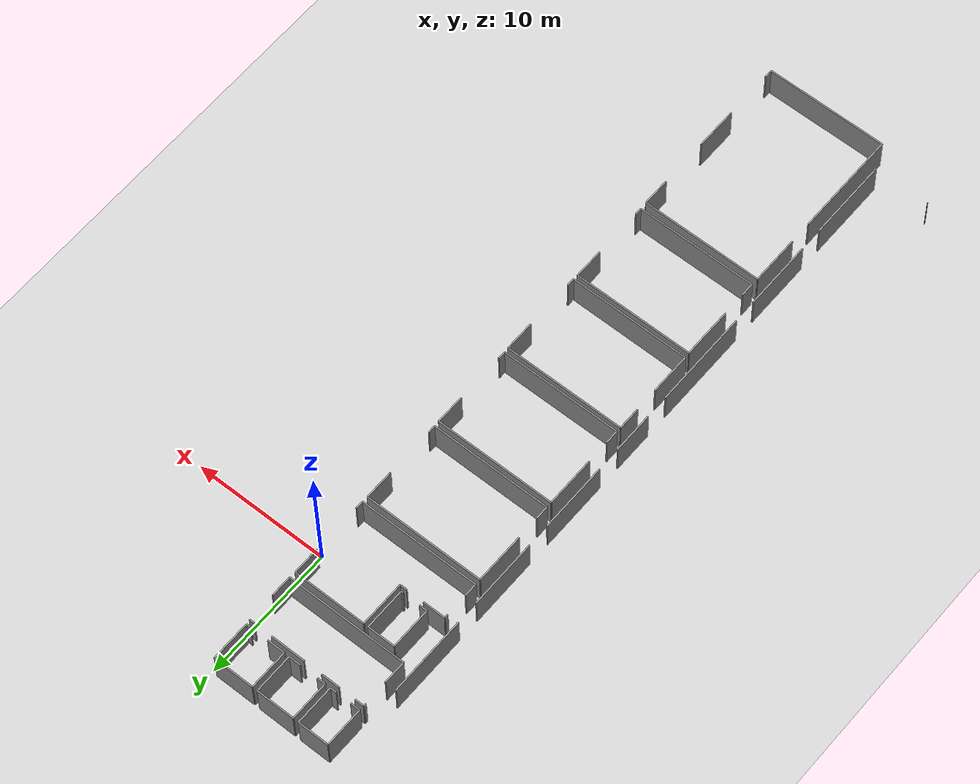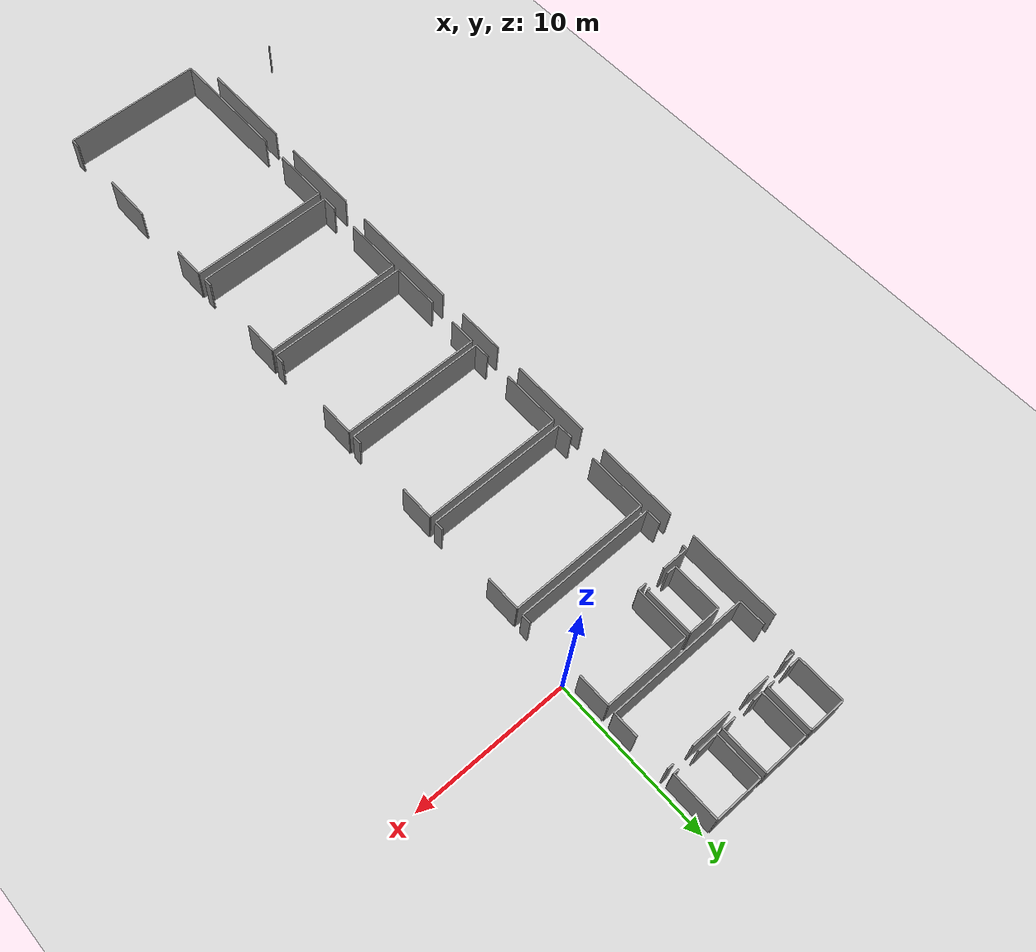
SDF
<sdf version="1.6">
 <world name="default">
  <model name="ground_plane">
   <static>1</static>
   <link name="link">
    <collision name="collision">
     <geometry><plane><normal>0 0 1</normal><size>100 100</size></plane></geometry>
     <surface><friction><ode><mu>100</mu><mu2>50</mu2></ode></friction></surface>
    </collision>
    <visual name="visual">
     <cast_shadows>0</cast_shadows>
     <geometry><plane><normal>0 0 1</normal><size>100 100</size></plane></geometry>
     <material>
      <script><uri>file://media/materials/scripts/gazebo.material</uri><name>Gazebo/Grey</name></script>
     </material>
    </visual>
   </link>
  </model>
  <model name="0510035737_A_40_1_105">
   <static>1</static>
   <link name="Wall_220">
    <collision name="Wall_220_Collision">
     <geometry><box><size>5.82326586381 0.1 2.5</size></box></geometry>
     <pose>2.91163293191 0 1.25 0 0 0</pose>
    </collision>
    <visual name="Wall_220_Visual">
     <pose>2.91163293191 0 1.25 0 0 0</pose>
     <geometry><box><size>5.82326586381 0.1 2.5</size></box></geometry>
     <material>
      <script><uri>file://media/materials/scripts/gazebo.material</uri><name>Gazebo/Grey</name></script>
      <ambient>1 1 1 1</ambient>
     </material>
    </visual>
    <pose>70.0217978456 -41.0770550666 0 0 0 -1.57079632679</pose>
   </link>
   <link name="Wall_221">
    <collision name="Wall_221_Collision">
     <geometry><box><size>5.08633344984 0.1 2.5</size></box></geometry>
     <pose>2.54316672492 0 1.25 0 0 0</pose>
    </collision>
    <visual name="Wall_221_Visual">
     <pose>2.54316672492 0 1.25 0 0 0</pose>
     <geometry><box><size>5.08633344984 0.1 2.5</size></box></geometry>
     <material>
      <script><uri>file://media/materials/scripts/gazebo.material</uri><name>Gazebo/Grey</name></script>
      <ambient>1 1 1 1</ambient>
     </material>
    </visual>
    <pose>70.0217978456 -48.5607702329 0 0 0 -1.57079632679</pose>
   </link>
   <link name="Wall_222">
    <collision name="Wall_222_Collision">
     <geometry><box><size>5.10666963236 0.1 2.5</size></box></geometry>
     <pose>2.55333481618 0 1.25 0 0 0</pose>
    </collision>
    <visual name="Wall_222_Visual">
     <pose>2.55333481618 0 1.25 0 0 0</pose>
     <geometry><box><size>5.10666963236 0.1 2.5</size></box></geometry>
     <material>
      <script><uri>file://media/materials/scripts/gazebo.material</uri><name>Gazebo/Grey</name></script>
      <ambient>1 1 1 1</ambient>
     </material>
    </visual>
    <pose>70.0217978456 -55.3388198659 0 0 0 -1.57079632679</pose>
   </link>
   <link name="Wall_223">
    <collision name="Wall_223_Collision">
     <geometry><box><size>3.01280543993 0.1 2.5</size></box></geometry>
     <pose>1.50640271996 0 1.25 0 0 0</pose>
    </collision>
    <visual name="Wall_223_Visual">
     <pose>1.50640271996 0 1.25 0 0 0</pose>
     <geometry><box><size>3.01280543993 0.1 2.5</size></box></geometry>
     <material>
      <script><uri>file://media/materials/scripts/gazebo.material</uri><name>Gazebo/Grey</name></script>
      <ambient>1 1 1 1</ambient>
     </material>
    </visual>
    <pose>70.0217978456 -62.2093991294 0 0 0 -1.57079632679</pose>
   </link>
   <link name="Wall_224">
    <collision name="Wall_224_Collision">
     <geometry><box><size>7.18324806965 0.1 2.5</size></box></geometry>
     <pose>3.59162403483 0 1.25 0 0 0</pose>
    </collision>
    <visual name="Wall_224_Visual">
     <pose>3.59162403483 0 1.25 0 0 0</pose>
     <geometry><box><size>7.18324806965 0.1 2.5</size></box></geometry>
     <material>
      <script><uri>file://media/materials/scripts/gazebo.material</uri><name>Gazebo/Grey</name></script>
      <ambient>1 1 1 1</ambient>
     </material>
    </visual>
    <pose>70.0217978456 -66.9365447555 0 0 0 -1.57079632679</pose>
   </link>
   <link name="Wall_225">
    <collision name="Wall_225_Collision">
     <geometry><box><size>5.10539862095 0.1 2.5</size></box></geometry>
     <pose>2.55269931048 0 1.25 0 0 0</pose>
    </collision>
    <visual name="Wall_225_Visual">
     <pose>2.55269931048 0 1.25 0 0 0</pose>
     <geometry><box><size>5.10539862095 0.1 2.5</size></box></geometry>
     <material>
      <script><uri>file://media/materials/scripts/gazebo.material</uri><name>Gazebo/Grey</name></script>
      <ambient>1 1 1 1</ambient>
     </material>
    </visual>
    <pose>70.0217978456 -75.8534523847 0 0 0 -1.57079632679</pose>
   </link>
   <link name="Wall_226">
    <collision name="Wall_226_Collision">
     <geometry><box><size>6.03120333005 0.1 2.5</size></box></geometry>
     <pose>3.01560166502 0 1.25 0 0 0</pose>
    </collision>
    <visual name="Wall_226_Visual">
     <pose>3.01560166502 0 1.25 0 0 0</pose>
     <geometry><box><size>6.03120333005 0.1 2.5</size></box></geometry>
     <material>
      <script><uri>file://media/materials/scripts/gazebo.material</uri><name>Gazebo/Grey</name></script>
      <ambient>1 1 1 1</ambient>
     </material>
    </visual>
    <pose>70.0217978456 -82.6889517333 0 0 0 -1.57079632679</pose>
   </link>
   <link name="Wall_227">
    <collision name="Wall_227_Collision">
     <geometry><box><size>0.0437294425474 0.1 2.5</size></box></geometry>
     <pose>0.0218647212737 0 1.25 0 0 0</pose>
    </collision>
    <visual name="Wall_227_Visual">
     <pose>0.0218647212737 0 1.25 0 0 0</pose>
     <geometry><box><size>0.0437294425474 0.1 2.5</size></box></geometry>
     <material>
      <script><uri>file://media/materials/scripts/gazebo.material</uri><name>Gazebo/Grey</name></script>
      <ambient>1 1 1 1</ambient>
     </material>
    </visual>
    <pose>65.9316831369 -88.7201550634 0 0 0 -2.92481525653</pose>
   </link>
   <link name="Wall_263">
    <collision name="Wall_263_Collision">
     <geometry><box><size>7.82866766229 0.1 2.5</size></box></geometry>
     <pose>3.91433383115 0 1.25 0 0 0</pose>
    </collision>
    <visual name="Wall_263_Visual">
     <pose>3.91433383115 0 1.25 0 0 0</pose>
     <geometry><box><size>7.82866766229 0.1 2.5</size></box></geometry>
     <material>
      <script><uri>file://media/materials/scripts/gazebo.material</uri><name>Gazebo/Grey</name></script>
      <ambient>1 1 1 1</ambient>
     </material>
    </visual>
    <pose>70.8573607448 -90.4738966032 0 0 0 1.57079632679</pose>
   </link>
   <link name="Wall_264">
    <collision name="Wall_264_Collision">
     <geometry><box><size>3.61221441962 0.1 2.5</size></box></geometry>
     <pose>1.80610720981 0 1.25 0 0 0</pose>
    </collision>
    <visual name="Wall_264_Visual">
     <pose>1.80610720981 0 1.25 0 0 0</pose>
     <geometry><box><size>3.61221441962 0.1 2.5</size></box></geometry>
     <material>
      <script><uri>file://media/materials/scripts/gazebo.material</uri><name>Gazebo/Grey</name></script>
      <ambient>1 1 1 1</ambient>
     </material>
    </visual>
    <pose>70.8573607448 -80.9784245814 0 0 0 1.57079632679</pose>
   </link>
   <link name="Wall_265">
    <collision name="Wall_265_Collision">
     <geometry><box><size>9.0272314194 0.1 2.5</size></box></geometry>
     <pose>4.5136157097 0 1.25 0 0 0</pose>
    </collision>
    <visual name="Wall_265_Visual">
     <pose>4.5136157097 0 1.25 0 0 0</pose>
     <geometry><box><size>9.0272314194 0.1 2.5</size></box></geometry>
     <material>
      <script><uri>file://media/materials/scripts/gazebo.material</uri><name>Gazebo/Grey</name></script>
      <ambient>1 1 1 1</ambient>
     </material>
    </visual>
    <pose>70.8573607448 -77.3662101617 0 0 0 0.0</pose>
   </link>
   <link name="Wall_266">
    <collision name="Wall_266_Collision">
     <geometry><box><size>2.05878427759 0.1 2.5</size></box></geometry>
     <pose>1.02939213879 0 1.25 0 0 0</pose>
    </collision>
    <visual name="Wall_266_Visual">
     <pose>1.02939213879 0 1.25 0 0 0</pose>
     <geometry><box><size>2.05878427759 0.1 2.5</size></box></geometry>
     <material>
      <script><uri>file://media/materials/scripts/gazebo.material</uri><name>Gazebo/Grey</name></script>
      <ambient>1 1 1 1</ambient>
     </material>
    </visual>
    <pose>79.8845921642 -77.3662101617 0 0 0 -1.57079632679</pose>
   </link>
   <link name="Wall_267">
    <collision name="Wall_267_Collision">
     <geometry><box><size>3.15973435862 0.1 2.5</size></box></geometry>
     <pose>1.57986717931 0 1.25 0 0 0</pose>
    </collision>
    <visual name="Wall_267_Visual">
     <pose>1.57986717931 0 1.25 0 0 0</pose>
     <geometry><box><size>3.15973435862 0.1 2.5</size></box></geometry>
     <material>
      <script><uri>file://media/materials/scripts/gazebo.material</uri><name>Gazebo/Grey</name></script>
      <ambient>1 1 1 1</ambient>
     </material>
    </visual>
    <pose>79.8845921642 -83.0550030187 0 0 0 -1.57079632679</pose>
   </link>
   <link name="Wall_268">
    <collision name="Wall_268_Collision">
     <geometry><box><size>0.594070731785 0.1 2.5</size></box></geometry>
     <pose>0.297035365892 0 1.25 0 0 0</pose>
    </collision>
    <visual name="Wall_268_Visual">
     <pose>0.297035365892 0 1.25 0 0 0</pose>
     <geometry><box><size>0.594070731785 0.1 2.5</size></box></geometry>
     <material>
      <script><uri>file://media/materials/scripts/gazebo.material</uri><name>Gazebo/Grey</name></script>
      <ambient>1 1 1 1</ambient>
     </material>
    </visual>
    <pose>79.8845921642 -89.8544056433 0 0 0 -1.57079632679</pose>
   </link>
   <link name="Wall_269">
    <collision name="Wall_269_Collision">
     <geometry><box><size>9.02726721037 0.1 2.5</size></box></geometry>
     <pose>4.51363360519 0 1.25 0 0 0</pose>
    </collision>
    <visual name="Wall_269_Visual">
     <pose>4.51363360519 0 1.25 0 0 0</pose>
     <geometry><box><size>9.02726721037 0.1 2.5</size></box></geometry>
     <material>
      <script><uri>file://media/materials/scripts/gazebo.material</uri><name>Gazebo/Grey</name></script>
      <ambient>1 1 1 1</ambient>
     </material>
    </visual>
    <pose>79.8845921642 -90.4484763751 0 0 0 -3.13877671149</pose>
   </link>
   <link name="Wall_270">
    <collision name="Wall_270_Collision">
     <geometry><box><size>0.973848940294 0.1 2.5</size></box></geometry>
     <pose>0.486924470147 0 1.25 0 0 0</pose>
    </collision>
    <visual name="Wall_270_Visual">
     <pose>0.486924470147 0 1.25 0 0 0</pose>
     <geometry><box><size>0.973848940294 0.1 2.5</size></box></geometry>
     <material>
      <script><uri>file://media/materials/scripts/gazebo.material</uri><name>Gazebo/Grey</name></script>
      <ambient>1 1 1 1</ambient>
     </material>
    </visual>
    <pose>70.8797305456 -76.8313685615 0 0 0 1.57079632679</pose>
   </link>
   <link name="Wall_271">
    <collision name="Wall_271_Collision">
     <geometry><box><size>3.72075879381 0.1 2.5</size></box></geometry>
     <pose>1.86037939691 0 1.25 0 0 0</pose>
    </collision>
    <visual name="Wall_271_Visual">
     <pose>1.86037939691 0 1.25 0 0 0</pose>
     <geometry><box><size>3.72075879381 0.1 2.5</size></box></geometry>
     <material>
      <script><uri>file://media/materials/scripts/gazebo.material</uri><name>Gazebo/Grey</name></script>
      <ambient>1 1 1 1</ambient>
     </material>
    </visual>
    <pose>70.8797305456 -74.1134377681 0 0 0 1.57079632679</pose>
   </link>
   <link name="Wall_272">
    <collision name="Wall_272_Collision">
     <geometry><box><size>8.96774808554 0.1 2.5</size></box></geometry>
     <pose>4.48387404277 0 1.25 0 0 0</pose>
    </collision>
    <visual name="Wall_272_Visual">
     <pose>4.48387404277 0 1.25 0 0 0</pose>
     <geometry><box><size>8.96774808554 0.1 2.5</size></box></geometry>
     <material>
      <script><uri>file://media/materials/scripts/gazebo.material</uri><name>Gazebo/Grey</name></script>
      <ambient>1 1 1 1</ambient>
     </material>
    </visual>
    <pose>70.8797305456 -70.3926789743 0 0 0 0.0</pose>
   </link>
   <link name="Wall_273">
    <collision name="Wall_273_Collision">
     <geometry><box><size>2.20927202822 0.1 2.5</size></box></geometry>
     <pose>1.10463601411 0 1.25 0 0 0</pose>
    </collision>
    <visual name="Wall_273_Visual">
     <pose>1.10463601411 0 1.25 0 0 0</pose>
     <geometry><box><size>2.20927202822 0.1 2.5</size></box></geometry>
     <material>
      <script><uri>file://media/materials/scripts/gazebo.material</uri><name>Gazebo/Grey</name></script>
      <ambient>1 1 1 1</ambient>
     </material>
    </visual>
    <pose>79.8474786311 -70.3926789743 0 0 0 -1.57079632679</pose>
   </link>
   <link name="Wall_274">
    <collision name="Wall_274_Collision">
     <geometry><box><size>0.537637825299 0.1 2.5</size></box></geometry>
     <pose>0.26881891265 0 1.25 0 0 0</pose>
    </collision>
    <visual name="Wall_274_Visual">
     <pose>0.26881891265 0 1.25 0 0 0</pose>
     <geometry><box><size>0.537637825299 0.1 2.5</size></box></geometry>
     <material>
      <script><uri>file://media/materials/scripts/gazebo.material</uri><name>Gazebo/Grey</name></script>
      <ambient>1 1 1 1</ambient>
     </material>
    </visual>
    <pose>79.8474786311 -76.2644974739 0 0 0 -1.57079632679</pose>
   </link>
   <link name="Wall_275">
    <collision name="Wall_275_Collision">
     <geometry><box><size>8.96779573303 0.1 2.5</size></box></geometry>
     <pose>4.48389786651 0 1.25 0 0 0</pose>
    </collision>
    <visual name="Wall_275_Visual">
     <pose>4.48389786651 0 1.25 0 0 0</pose>
     <geometry><box><size>8.96779573303 0.1 2.5</size></box></geometry>
     <material>
      <script><uri>file://media/materials/scripts/gazebo.material</uri><name>Gazebo/Grey</name></script>
      <ambient>1 1 1 1</ambient>
     </material>
    </visual>
    <pose>79.8474786311 -76.8021352992 0 0 0 -3.13833284315</pose>
   </link>
   <link name="Wall_276">
    <collision name="Wall_276_Collision">
     <geometry><box><size>3.05805344603 0.1 2.5</size></box></geometry>
     <pose>1.52902672301 0 1.25 0 0 0</pose>
    </collision>
    <visual name="Wall_276_Visual">
     <pose>1.52902672301 0 1.25 0 0 0</pose>
     <geometry><box><size>3.05805344603 0.1 2.5</size></box></geometry>
     <material>
      <script><uri>file://media/materials/scripts/gazebo.material</uri><name>Gazebo/Grey</name></script>
      <ambient>1 1 1 1</ambient>
     </material>
    </visual>
    <pose>70.8441422262 -69.9981570335 0 0 0 1.57079632679</pose>
   </link>
   <link name="Wall_277">
    <collision name="Wall_277_Collision">
     <geometry><box><size>1.68586953068 0.1 2.5</size></box></geometry>
     <pose>0.84293476534 0 1.25 0 0 0</pose>
    </collision>
    <visual name="Wall_277_Visual">
     <pose>0.84293476534 0 1.25 0 0 0</pose>
     <geometry><box><size>1.68586953068 0.1 2.5</size></box></geometry>
     <material>
      <script><uri>file://media/materials/scripts/gazebo.material</uri><name>Gazebo/Grey</name></script>
      <ambient>1 1 1 1</ambient>
     </material>
    </visual>
    <pose>70.8441422262 -65.203902005 0 0 0 1.57079632679</pose>
   </link>
   <link name="Wall_278">
    <collision name="Wall_278_Collision">
     <geometry><box><size>9.03079025134 0.1 2.5</size></box></geometry>
     <pose>4.51539512567 0 1.25 0 0 0</pose>
    </collision>
    <visual name="Wall_278_Visual">
     <pose>4.51539512567 0 1.25 0 0 0</pose>
     <geometry><box><size>9.03079025134 0.1 2.5</size></box></geometry>
     <material>
      <script><uri>file://media/materials/scripts/gazebo.material</uri><name>Gazebo/Grey</name></script>
      <ambient>1 1 1 1</ambient>
     </material>
    </visual>
    <pose>70.8441422262 -63.5180324743 0 0 0 0.0</pose>
   </link>
   <link name="Wall_279">
    <collision name="Wall_279_Collision">
     <geometry><box><size>2.22757459248 0.1 2.5</size></box></geometry>
     <pose>1.11378729624 0 1.25 0 0 0</pose>
    </collision>
    <visual name="Wall_279_Visual">
     <pose>1.11378729624 0 1.25 0 0 0</pose>
     <geometry><box><size>2.22757459248 0.1 2.5</size></box></geometry>
     <material>
      <script><uri>file://media/materials/scripts/gazebo.material</uri><name>Gazebo/Grey</name></script>
      <ambient>1 1 1 1</ambient>
     </material>
    </visual>
    <pose>79.8749324775 -63.5180324743 0 0 0 -1.57079632679</pose>
   </link>
   <link name="Wall_280">
    <collision name="Wall_280_Collision">
     <geometry><box><size>0.592545518096 0.1 2.5</size></box></geometry>
     <pose>0.296272759048 0 1.25 0 0 0</pose>
    </collision>
    <visual name="Wall_280_Visual">
     <pose>0.296272759048 0 1.25 0 0 0</pose>
     <geometry><box><size>0.592545518096 0.1 2.5</size></box></geometry>
     <material>
      <script><uri>file://media/materials/scripts/gazebo.material</uri><name>Gazebo/Grey</name></script>
      <ambient>1 1 1 1</ambient>
     </material>
    </visual>
    <pose>79.8749324775 -69.4246766865 0 0 0 -1.57079632679</pose>
   </link>
   <link name="Wall_281">
    <collision name="Wall_281_Collision">
     <geometry><box><size>9.03081037585 0.1 2.5</size></box></geometry>
     <pose>4.51540518792 0 1.25 0 0 0</pose>
    </collision>
    <visual name="Wall_281_Visual">
     <pose>4.51540518792 0 1.25 0 0 0</pose>
     <geometry><box><size>9.03081037585 0.1 2.5</size></box></geometry>
     <material>
      <script><uri>file://media/materials/scripts/gazebo.material</uri><name>Gazebo/Grey</name></script>
      <ambient>1 1 1 1</ambient>
     </material>
    </visual>
    <pose>79.8749324775 -70.0172222046 0 0 0 3.13948152685</pose>
   </link>
   <link name="Wall_282">
    <collision name="Wall_282_Collision">
     <geometry><box><size>1.01096247339 0.1 2.5</size></box></geometry>
     <pose>0.505481236694 0 1.25 0 0 0</pose>
    </collision>
    <visual name="Wall_282_Visual">
     <pose>0.505481236694 0 1.25 0 0 0</pose>
     <geometry><box><size>1.01096247339 0.1 2.5</size></box></geometry>
     <material>
      <script><uri>file://media/materials/scripts/gazebo.material</uri><name>Gazebo/Grey</name></script>
      <ambient>1 1 1 1</ambient>
     </material>
    </visual>
    <pose>70.8558355311 -63.1748593944 0 0 0 1.57079632679</pose>
   </link>
   <link name="Wall_283">
    <collision name="Wall_283_Collision">
     <geometry><box><size>3.7113533094 0.1 2.5</size></box></geometry>
     <pose>1.8556766547 0 1.25 0 0 0</pose>
    </collision>
    <visual name="Wall_283_Visual">
     <pose>1.8556766547 0 1.25 0 0 0</pose>
     <geometry><box><size>3.7113533094 0.1 2.5</size></box></geometry>
     <material>
      <script><uri>file://media/materials/scripts/gazebo.material</uri><name>Gazebo/Grey</name></script>
      <ambient>1 1 1 1</ambient>
     </material>
    </visual>
    <pose>70.8558355311 -60.4609958374 0 0 0 1.57079632679</pose>
   </link>
   <link name="Wall_284">
    <collision name="Wall_284_Collision">
     <geometry><box><size>8.9985065616 0.1 2.5</size></box></geometry>
     <pose>4.4992532808 0 1.25 0 0 0</pose>
    </collision>
    <visual name="Wall_284_Visual">
     <pose>4.4992532808 0 1.25 0 0 0</pose>
     <geometry><box><size>8.9985065616 0.1 2.5</size></box></geometry>
     <material>
      <script><uri>file://media/materials/scripts/gazebo.material</uri><name>Gazebo/Grey</name></script>
      <ambient>1 1 1 1</ambient>
     </material>
    </visual>
    <pose>70.8558355311 -56.749642528 0 0 0 0.0</pose>
   </link>
   <link name="Wall_285">
    <collision name="Wall_285_Collision">
     <geometry><box><size>2.17724254075 0.1 2.5</size></box></geometry>
     <pose>1.08862127038 0 1.25 0 0 0</pose>
    </collision>
    <visual name="Wall_285_Visual">
     <pose>1.08862127038 0 1.25 0 0 0</pose>
     <geometry><box><size>2.17724254075 0.1 2.5</size></box></geometry>
     <material>
      <script><uri>file://media/materials/scripts/gazebo.material</uri><name>Gazebo/Grey</name></script>
      <ambient>1 1 1 1</ambient>
     </material>
    </visual>
    <pose>79.8543420927 -56.749642528 0 0 0 -1.57079632679</pose>
   </link>
   <link name="Wall_286">
    <collision name="Wall_286_Collision">
     <geometry><box><size>0.571700931016 0.1 2.5</size></box></geometry>
     <pose>0.285850465508 0 1.25 0 0 0</pose>
    </collision>
    <visual name="Wall_286_Visual">
     <pose>0.285850465508 0 1.25 0 0 0</pose>
     <geometry><box><size>0.571700931016 0.1 2.5</size></box></geometry>
     <material>
      <script><uri>file://media/materials/scripts/gazebo.material</uri><name>Gazebo/Grey</name></script>
      <ambient>1 1 1 1</ambient>
     </material>
    </visual>
    <pose>79.8543420927 -62.5777382352 0 0 0 -1.57079632679</pose>
   </link>
   <link name="Wall_287">
    <collision name="Wall_287_Collision">
     <geometry><box><size>8.99854246682 0.1 2.5</size></box></geometry>
     <pose>4.49927123341 0 1.25 0 0 0</pose>
    </collision>
    <visual name="Wall_287_Visual">
     <pose>4.49927123341 0 1.25 0 0 0</pose>
     <geometry><box><size>8.99854246682 0.1 2.5</size></box></geometry>
     <material>
      <script><uri>file://media/materials/scripts/gazebo.material</uri><name>Gazebo/Grey</name></script>
      <ambient>1 1 1 1</ambient>
     </material>
    </visual>
    <pose>79.8543420927 -63.1494391662 0 0 0 -3.13876772255</pose>
   </link>
   <link name="Wall_288">
    <collision name="Wall_288_Collision">
     <geometry><box><size>1.00028597757 0.1 2.5</size></box></geometry>
     <pose>0.500142988783 0 1.25 0 0 0</pose>
    </collision>
    <visual name="Wall_288_Visual">
     <pose>0.500142988783 0 1.25 0 0 0</pose>
     <geometry><box><size>1.00028597757 0.1 2.5</size></box></geometry>
     <material>
      <script><uri>file://media/materials/scripts/gazebo.material</uri><name>Gazebo/Grey</name></script>
      <ambient>1 1 1 1</ambient>
     </material>
    </visual>
    <pose>70.8510056878 -56.3464777096 0 0 0 1.57079632679</pose>
   </link>
   <link name="Wall_289">
    <collision name="Wall_289_Collision">
     <geometry><box><size>3.72863906454 0.1 2.5</size></box></geometry>
     <pose>1.86431953227 0 1.25 0 0 0</pose>
    </collision>
    <visual name="Wall_289_Visual">
     <pose>1.86431953227 0 1.25 0 0 0</pose>
     <geometry><box><size>3.72863906454 0.1 2.5</size></box></geometry>
     <material>
      <script><uri>file://media/materials/scripts/gazebo.material</uri><name>Gazebo/Grey</name></script>
      <ambient>1 1 1 1</ambient>
     </material>
    </visual>
    <pose>70.8510056878 -53.6582885831 0 0 0 1.57079632679</pose>
   </link>
   <link name="Wall_290">
    <collision name="Wall_290_Collision">
     <geometry><box><size>8.98655905437 0.1 2.5</size></box></geometry>
     <pose>4.49327952718 0 1.25 0 0 0</pose>
    </collision>
    <visual name="Wall_290_Visual">
     <pose>4.49327952718 0 1.25 0 0 0</pose>
     <geometry><box><size>8.98655905437 0.1 2.5</size></box></geometry>
     <material>
      <script><uri>file://media/materials/scripts/gazebo.material</uri><name>Gazebo/Grey</name></script>
      <ambient>1 1 1 1</ambient>
     </material>
    </visual>
    <pose>70.8510056878 -49.9296495186 0 0 0 0.0</pose>
   </link>
   <link name="Wall_291">
    <collision name="Wall_291_Collision">
     <geometry><box><size>2.19147786851 0.1 2.5</size></box></geometry>
     <pose>1.09573893426 0 1.25 0 0 0</pose>
    </collision>
    <visual name="Wall_291_Visual">
     <pose>1.09573893426 0 1.25 0 0 0</pose>
     <geometry><box><size>2.19147786851 0.1 2.5</size></box></geometry>
     <material>
      <script><uri>file://media/materials/scripts/gazebo.material</uri><name>Gazebo/Grey</name></script>
      <ambient>1 1 1 1</ambient>
     </material>
    </visual>
    <pose>79.8375647421 -49.9296495186 0 0 0 -1.57079632679</pose>
   </link>
   <link name="Wall_292">
    <collision name="Wall_292_Collision">
     <geometry><box><size>0.581614819993 0.1 2.5</size></box></geometry>
     <pose>0.290807409997 0 1.25 0 0 0</pose>
    </collision>
    <visual name="Wall_292_Visual">
     <pose>0.290807409997 0 1.25 0 0 0</pose>
     <geometry><box><size>0.581614819993 0.1 2.5</size></box></geometry>
     <material>
      <script><uri>file://media/materials/scripts/gazebo.material</uri><name>Gazebo/Grey</name></script>
      <ambient>1 1 1 1</ambient>
     </material>
    </visual>
    <pose>79.8375647421 -55.7607956531 0 0 0 -1.57079632679</pose>
   </link>
   <link name="Wall_293">
    <collision name="Wall_293_Collision">
     <geometry><box><size>8.98655997476 0.1 2.5</size></box></geometry>
     <pose>4.49327998738 0 1.25 0 0 0</pose>
    </collision>
    <visual name="Wall_293_Visual">
     <pose>4.49327998738 0 1.25 0 0 0</pose>
     <geometry><box><size>8.98655997476 0.1 2.5</size></box></geometry>
     <material>
      <script><uri>file://media/materials/scripts/gazebo.material</uri><name>Gazebo/Grey</name></script>
      <ambient>1 1 1 1</ambient>
     </material>
    </visual>
    <pose>79.8375647421 -56.3424104731 0 0 0 -3.14114006254</pose>
   </link>
   <link name="Wall_294">
    <collision name="Wall_294_Collision">
     <geometry><box><size>0.966985478695 0.1 2.5</size></box></geometry>
     <pose>0.483492739347 0 1.25 0 0 0</pose>
    </collision>
    <visual name="Wall_294_Visual">
     <pose>0.483492739347 0 1.25 0 0 0</pose>
     <geometry><box><size>0.966985478695 0.1 2.5</size></box></geometry>
     <material>
      <script><uri>file://media/materials/scripts/gazebo.material</uri><name>Gazebo/Grey</name></script>
      <ambient>1 1 1 1</ambient>
     </material>
    </visual>
    <pose>70.8510056878 -49.5216548569 0 0 0 1.57079632679</pose>
   </link>
   <link name="Wall_295">
    <collision name="Wall_295_Collision">
     <geometry><box><size>0.274792666264 0.1 2.5</size></box></geometry>
     <pose>0.137396333132 0 1.25 0 0 0</pose>
    </collision>
    <visual name="Wall_295_Visual">
     <pose>0.137396333132 0 1.25 0 0 0</pose>
     <geometry><box><size>0.274792666264 0.1 2.5</size></box></geometry>
     <material>
      <script><uri>file://media/materials/scripts/gazebo.material</uri><name>Gazebo/Grey</name></script>
      <ambient>1 1 1 1</ambient>
     </material>
    </visual>
    <pose>70.8510056878 -46.8840519844 0 0 0 1.57079632679</pose>
   </link>
   <link name="Wall_296">
    <collision name="Wall_296_Collision">
     <geometry><box><size>1.68129388961 0.1 2.5</size></box></geometry>
     <pose>0.840646944806 0 1.25 0 0 0</pose>
    </collision>
    <visual name="Wall_296_Visual">
     <pose>0.840646944806 0 1.25 0 0 0</pose>
     <geometry><box><size>1.68129388961 0.1 2.5</size></box></geometry>
     <material>
      <script><uri>file://media/materials/scripts/gazebo.material</uri><name>Gazebo/Grey</name></script>
      <ambient>1 1 1 1</ambient>
     </material>
    </visual>
    <pose>70.8510056878 -46.6092593181 0 0 0 0.0</pose>
   </link>
   <link name="Wall_297">
    <collision name="Wall_297_Collision">
     <geometry><box><size>0.537892027581 0.1 2.5</size></box></geometry>
     <pose>0.26894601379 0 1.25 0 0 0</pose>
    </collision>
    <visual name="Wall_297_Visual">
     <pose>0.26894601379 0 1.25 0 0 0</pose>
     <geometry><box><size>0.537892027581 0.1 2.5</size></box></geometry>
     <material>
      <script><uri>file://media/materials/scripts/gazebo.material</uri><name>Gazebo/Grey</name></script>
      <ambient>1 1 1 1</ambient>
     </material>
    </visual>
    <pose>73.8447459566 -46.6092593181 0 0 0 0.0</pose>
   </link>
   <link name="Wall_298">
    <collision name="Wall_298_Collision">
     <geometry><box><size>3.38089034349 0.1 2.5</size></box></geometry>
     <pose>1.69044517175 0 1.25 0 0 0</pose>
    </collision>
    <visual name="Wall_298_Visual">
     <pose>1.69044517175 0 1.25 0 0 0</pose>
     <geometry><box><size>3.38089034349 0.1 2.5</size></box></geometry>
     <material>
      <script><uri>file://media/materials/scripts/gazebo.material</uri><name>Gazebo/Grey</name></script>
      <ambient>1 1 1 1</ambient>
     </material>
    </visual>
    <pose>74.3826379842 -46.6092593181 0 0 0 1.57079632679</pose>
   </link>
   <link name="Wall_299">
    <collision name="Wall_299_Collision">
     <geometry><box><size>5.47933017699 0.1 2.5</size></box></geometry>
     <pose>2.73966508849 0 1.25 0 0 0</pose>
    </collision>
    <visual name="Wall_299_Visual">
     <pose>2.73966508849 0 1.25 0 0 0</pose>
     <geometry><box><size>5.47933017699 0.1 2.5</size></box></geometry>
     <material>
      <script><uri>file://media/materials/scripts/gazebo.material</uri><name>Gazebo/Grey</name></script>
      <ambient>1 1 1 1</ambient>
     </material>
    </visual>
    <pose>74.3826379842 -43.2283689746 0 0 0 0.0</pose>
   </link>
   <link name="Wall_300">
    <collision name="Wall_300_Collision">
     <geometry><box><size>2.03793969051 0.1 2.5</size></box></geometry>
     <pose>1.01896984525 0 1.25 0 0 0</pose>
    </collision>
    <visual name="Wall_300_Visual">
     <pose>1.01896984525 0 1.25 0 0 0</pose>
     <geometry><box><size>2.03793969051 0.1 2.5</size></box></geometry>
     <material>
      <script><uri>file://media/materials/scripts/gazebo.material</uri><name>Gazebo/Grey</name></script>
      <ambient>1 1 1 1</ambient>
     </material>
    </visual>
    <pose>79.8619681612 -43.2283689746 0 0 0 -1.57079632679</pose>
   </link>
   <link name="Wall_301">
    <collision name="Wall_301_Collision">
     <geometry><box><size>0.5828858314 0.1 2.5</size></box></geometry>
     <pose>0.2914429157 0 1.25 0 0 0</pose>
    </collision>
    <visual name="Wall_301_Visual">
     <pose>0.2914429157 0 1.25 0 0 0</pose>
     <geometry><box><size>0.5828858314 0.1 2.5</size></box></geometry>
     <material>
      <script><uri>file://media/materials/scripts/gazebo.material</uri><name>Gazebo/Grey</name></script>
      <ambient>1 1 1 1</ambient>
     </material>
    </visual>
    <pose>79.8619681612 -48.9072479426 0 0 0 -1.57079632679</pose>
   </link>
   <link name="Wall_302">
    <collision name="Wall_302_Collision">
     <geometry><box><size>9.01101760488 0.1 2.5</size></box></geometry>
     <pose>4.50550880244 0 1.25 0 0 0</pose>
    </collision>
    <visual name="Wall_302_Visual">
     <pose>4.50550880244 0 1.25 0 0 0</pose>
     <geometry><box><size>9.01101760488 0.1 2.5</size></box></geometry>
     <material>
      <script><uri>file://media/materials/scripts/gazebo.material</uri><name>Gazebo/Grey</name></script>
      <ambient>1 1 1 1</ambient>
     </material>
    </visual>
    <pose>79.8619681612 -49.490133774 0 0 0 -3.13809458616</pose>
   </link>
   <link name="Wall_303">
    <collision name="Wall_303_Collision">
     <geometry><box><size>3.059832862 0.1 2.5</size></box></geometry>
     <pose>1.529916431 0 1.25 0 0 0</pose>
    </collision>
    <visual name="Wall_303_Visual">
     <pose>1.529916431 0 1.25 0 0 0</pose>
     <geometry><box><size>3.059832862 0.1 2.5</size></box></geometry>
     <material>
      <script><uri>file://media/materials/scripts/gazebo.material</uri><name>Gazebo/Grey</name></script>
      <ambient>1 1 1 1</ambient>
     </material>
    </visual>
    <pose>71.9839852563 -46.2907438594 0 0 0 1.57079632679</pose>
   </link>
   <link name="Wall_304">
    <collision name="Wall_304_Collision">
     <geometry><box><size>2.05471704109 0.1 2.5</size></box></geometry>
     <pose>1.02735852054 0 1.25 0 0 0</pose>
    </collision>
    <visual name="Wall_304_Visual">
     <pose>1.02735852054 0 1.25 0 0 0</pose>
     <geometry><box><size>2.05471704109 0.1 2.5</size></box></geometry>
     <material>
      <script><uri>file://media/materials/scripts/gazebo.material</uri><name>Gazebo/Grey</name></script>
      <ambient>1 1 1 1</ambient>
     </material>
    </visual>
    <pose>71.9839852563 -43.2309109974 0 0 0 0.0</pose>
   </link>
   <link name="Wall_305">
    <collision name="Wall_305_Collision">
     <geometry><box><size>3.07254297607 0.1 2.5</size></box></geometry>
     <pose>1.53627148804 0 1.25 0 0 0</pose>
    </collision>
    <visual name="Wall_305_Visual">
     <pose>1.53627148804 0 1.25 0 0 0</pose>
     <geometry><box><size>3.07254297607 0.1 2.5</size></box></geometry>
     <material>
      <script><uri>file://media/materials/scripts/gazebo.material</uri><name>Gazebo/Grey</name></script>
      <ambient>1 1 1 1</ambient>
     </material>
    </visual>
    <pose>74.0387022974 -43.2309109974 0 0 0 -1.57079632679</pose>
   </link>
   <link name="Wall_306">
    <collision name="Wall_306_Collision">
     <geometry><box><size>0.169552921737 0.1 2.5</size></box></geometry>
     <pose>0.0847764608687 0 1.25 0 0 0</pose>
    </collision>
    <visual name="Wall_306_Visual">
     <pose>0.0847764608687 0 1.25 0 0 0</pose>
     <geometry><box><size>0.169552921737 0.1 2.5</size></box></geometry>
     <material>
      <script><uri>file://media/materials/scripts/gazebo.material</uri><name>Gazebo/Grey</name></script>
      <ambient>1 1 1 1</ambient>
     </material>
    </visual>
    <pose>74.0387022974 -46.3034539735 0 0 0 3.14159265359</pose>
   </link>
   <link name="Wall_307">
    <collision name="Wall_307_Collision">
     <geometry><box><size>0.59954371979 0.1 2.5</size></box></geometry>
     <pose>0.299771859895 0 1.25 0 0 0</pose>
    </collision>
    <visual name="Wall_307_Visual">
     <pose>0.299771859895 0 1.25 0 0 0</pose>
     <geometry><box><size>0.59954371979 0.1 2.5</size></box></geometry>
     <material>
      <script><uri>file://media/materials/scripts/gazebo.material</uri><name>Gazebo/Grey</name></script>
      <ambient>1 1 1 1</ambient>
     </material>
    </visual>
    <pose>72.583394236 -46.3034539735 0 0 0 3.12039142024</pose>
   </link>
   <link name="Wall_308">
    <collision name="Wall_308_Collision">
     <geometry><box><size>1.67748085539 0.1 2.5</size></box></geometry>
     <pose>0.838740427695 0 1.25 0 0 0</pose>
    </collision>
    <visual name="Wall_308_Visual">
     <pose>0.838740427695 0 1.25 0 0 0</pose>
     <geometry><box><size>1.67748085539 0.1 2.5</size></box></geometry>
     <material>
      <script><uri>file://media/materials/scripts/gazebo.material</uri><name>Gazebo/Grey</name></script>
      <ambient>1 1 1 1</ambient>
     </material>
    </visual>
    <pose>70.8504972832 -42.767246036 0 0 0 1.57079632679</pose>
   </link>
   <link name="Wall_309">
    <collision name="Wall_309_Collision">
     <geometry><box><size>0.208700073083 0.1 2.5</size></box></geometry>
     <pose>0.104350036542 0 1.25 0 0 0</pose>
    </collision>
    <visual name="Wall_309_Visual">
     <pose>0.104350036542 0 1.25 0 0 0</pose>
     <geometry><box><size>0.208700073083 0.1 2.5</size></box></geometry>
     <material>
      <script><uri>file://media/materials/scripts/gazebo.material</uri><name>Gazebo/Grey</name></script>
      <ambient>1 1 1 1</ambient>
     </material>
    </visual>
    <pose>70.8504972832 -39.2900130279 0 0 0 1.57079632679</pose>
   </link>
   <link name="Wall_310">
    <collision name="Wall_310_Collision">
     <geometry><box><size>0.670839820787 0.1 2.5</size></box></geometry>
     <pose>0.335419910394 0 1.25 0 0 0</pose>
    </collision>
    <visual name="Wall_310_Visual">
     <pose>0.335419910394 0 1.25 0 0 0</pose>
     <geometry><box><size>0.670839820787 0.1 2.5</size></box></geometry>
     <material>
      <script><uri>file://media/materials/scripts/gazebo.material</uri><name>Gazebo/Grey</name></script>
      <ambient>1 1 1 1</ambient>
     </material>
    </visual>
    <pose>70.8504972832 -39.0813129548 0 0 0 0.0</pose>
   </link>
   <link name="Wall_311">
    <collision name="Wall_311_Collision">
     <geometry><box><size>1.39531632296 0.1 2.5</size></box></geometry>
     <pose>0.697658161482 0 1.25 0 0 0</pose>
    </collision>
    <visual name="Wall_311_Visual">
     <pose>0.697658161482 0 1.25 0 0 0</pose>
     <geometry><box><size>1.39531632296 0.1 2.5</size></box></geometry>
     <material>
      <script><uri>file://media/materials/scripts/gazebo.material</uri><name>Gazebo/Grey</name></script>
      <ambient>1 1 1 1</ambient>
     </material>
    </visual>
    <pose>72.7554891805 -39.0813129548 0 0 0 0.0</pose>
   </link>
   <link name="Wall_312">
    <collision name="Wall_312_Collision">
     <geometry><box><size>2.60125194624 0.1 2.5</size></box></geometry>
     <pose>1.30062597312 0 1.25 0 0 0</pose>
    </collision>
    <visual name="Wall_312_Visual">
     <pose>1.30062597312 0 1.25 0 0 0</pose>
     <geometry><box><size>2.60125194624 0.1 2.5</size></box></geometry>
     <material>
      <script><uri>file://media/materials/scripts/gazebo.material</uri><name>Gazebo/Grey</name></script>
      <ambient>1 1 1 1</ambient>
     </material>
    </visual>
    <pose>75.536716342 -39.0813129548 0 0 0 0.0</pose>
   </link>
   <link name="Wall_313">
    <collision name="Wall_313_Collision">
     <geometry><box><size>0.398843379619 0.1 2.5</size></box></geometry>
     <pose>0.19942168981 0 1.25 0 0 0</pose>
    </collision>
    <visual name="Wall_313_Visual">
     <pose>0.19942168981 0 1.25 0 0 0</pose>
     <geometry><box><size>0.398843379619 0.1 2.5</size></box></geometry>
     <material>
      <script><uri>file://media/materials/scripts/gazebo.material</uri><name>Gazebo/Grey</name></script>
      <ambient>1 1 1 1</ambient>
     </material>
    </visual>
    <pose>79.5053223603 -39.0813129548 0 0 0 0.0</pose>
   </link>
   <link name="Wall_314">
    <collision name="Wall_314_Collision">
     <geometry><box><size>1.57885037018 0.1 2.5</size></box></geometry>
     <pose>0.789425185091 0 1.25 0 0 0</pose>
    </collision>
    <visual name="Wall_314_Visual">
     <pose>0.789425185091 0 1.25 0 0 0</pose>
     <geometry><box><size>1.57885037018 0.1 2.5</size></box></geometry>
     <material>
      <script><uri>file://media/materials/scripts/gazebo.material</uri><name>Gazebo/Grey</name></script>
      <ambient>1 1 1 1</ambient>
     </material>
    </visual>
    <pose>79.9041657399 -41.1769565632 0 0 0 -1.57079632679</pose>
   </link>
   <link name="Wall_315">
    <collision name="Wall_315_Collision">
     <geometry><box><size>9.05367568319 0.1 2.5</size></box></geometry>
     <pose>4.5268378416 0 1.25 0 0 0</pose>
    </collision>
    <visual name="Wall_315_Visual">
     <pose>4.5268378416 0 1.25 0 0 0</pose>
     <geometry><box><size>9.05367568319 0.1 2.5</size></box></geometry>
     <material>
      <script><uri>file://media/materials/scripts/gazebo.material</uri><name>Gazebo/Grey</name></script>
      <ambient>1 1 1 1</ambient>
     </material>
    </visual>
    <pose>79.9041657399 -42.7558069334 0 0 0 -3.14032917717</pose>
   </link>
   <link name="Wall_316">
    <collision name="Wall_316_Collision">
     <geometry><box><size>2.91544596613 0.1 2.5</size></box></geometry>
     <pose>1.45772298306 0 1.25 0 0 0</pose>
    </collision>
    <visual name="Wall_316_Visual">
     <pose>1.45772298306 0 1.25 0 0 0</pose>
     <geometry><box><size>2.91544596613 0.1 2.5</size></box></geometry>
     <material>
      <script><uri>file://media/materials/scripts/gazebo.material</uri><name>Gazebo/Grey</name></script>
      <ambient>1 1 1 1</ambient>
     </material>
    </visual>
    <pose>70.840329192 -38.7381398748 0 0 0 1.57079632679</pose>
   </link>
   <link name="Wall_317">
    <collision name="Wall_317_Collision">
     <geometry><box><size>2.30612309745 0.1 2.5</size></box></geometry>
     <pose>1.15306154873 0 1.25 0 0 0</pose>
    </collision>
    <visual name="Wall_317_Visual">
     <pose>1.15306154873 0 1.25 0 0 0</pose>
     <geometry><box><size>2.30612309745 0.1 2.5</size></box></geometry>
     <material>
      <script><uri>file://media/materials/scripts/gazebo.material</uri><name>Gazebo/Grey</name></script>
      <ambient>1 1 1 1</ambient>
     </material>
    </visual>
    <pose>70.840329192 -35.8226939087 0 0 0 0.0</pose>
   </link>
   <link name="Wall_318">
    <collision name="Wall_318_Collision">
     <geometry><box><size>2.90909090909 0.1 2.5</size></box></geometry>
     <pose>1.45454545455 0 1.25 0 0 0</pose>
    </collision>
    <visual name="Wall_318_Visual">
     <pose>1.45454545455 0 1.25 0 0 0</pose>
     <geometry><box><size>2.90909090909 0.1 2.5</size></box></geometry>
     <material>
      <script><uri>file://media/materials/scripts/gazebo.material</uri><name>Gazebo/Grey</name></script>
      <ambient>1 1 1 1</ambient>
     </material>
    </visual>
    <pose>73.1464522894 -35.8226939087 0 0 0 -1.57079632679</pose>
   </link>
   <link name="Wall_319">
    <collision name="Wall_319_Collision">
     <geometry><box><size>0.4649359728 0.1 2.5</size></box></geometry>
     <pose>0.2324679864 0 1.25 0 0 0</pose>
    </collision>
    <visual name="Wall_319_Visual">
     <pose>0.2324679864 0 1.25 0 0 0</pose>
     <geometry><box><size>0.4649359728 0.1 2.5</size></box></geometry>
     <material>
      <script><uri>file://media/materials/scripts/gazebo.material</uri><name>Gazebo/Grey</name></script>
      <ambient>1 1 1 1</ambient>
     </material>
    </visual>
    <pose>73.1464522894 -38.7317848178 0 0 0 3.14159265359</pose>
   </link>
   <link name="Wall_320">
    <collision name="Wall_320_Collision">
     <geometry><box><size>0.712303142642 0.1 2.5</size></box></geometry>
     <pose>0.356151571321 0 1.25 0 0 0</pose>
    </collision>
    <visual name="Wall_320_Visual">
     <pose>0.356151571321 0 1.25 0 0 0</pose>
     <geometry><box><size>0.712303142642 0.1 2.5</size></box></geometry>
     <material>
      <script><uri>file://media/materials/scripts/gazebo.material</uri><name>Gazebo/Grey</name></script>
      <ambient>1 1 1 1</ambient>
     </material>
    </visual>
    <pose>71.5526039846 -38.7317848178 0 0 0 -3.1326706919</pose>
   </link>
   <link name="Wall_321">
    <collision name="Wall_321_Collision">
     <geometry><box><size>2.90654888628 0.1 2.5</size></box></geometry>
     <pose>1.45327444314 0 1.25 0 0 0</pose>
    </collision>
    <visual name="Wall_321_Visual">
     <pose>1.45327444314 0 1.25 0 0 0</pose>
     <geometry><box><size>2.90654888628 0.1 2.5</size></box></geometry>
     <material>
      <script><uri>file://media/materials/scripts/gazebo.material</uri><name>Gazebo/Grey</name></script>
      <ambient>1 1 1 1</ambient>
     </material>
    </visual>
    <pose>73.5661402561 -38.729242795 0 0 0 1.57079632679</pose>
   </link>
   <link name="Wall_322">
    <collision name="Wall_322_Collision">
     <geometry><box><size>2.84655714785 0.1 2.5</size></box></geometry>
     <pose>1.42327857393 0 1.25 0 0 0</pose>
    </collision>
    <visual name="Wall_322_Visual">
     <pose>1.42327857393 0 1.25 0 0 0</pose>
     <geometry><box><size>2.84655714785 0.1 2.5</size></box></geometry>
     <material>
      <script><uri>file://media/materials/scripts/gazebo.material</uri><name>Gazebo/Grey</name></script>
      <ambient>1 1 1 1</ambient>
     </material>
    </visual>
    <pose>73.5661402561 -35.8226939087 0 0 0 0.0</pose>
   </link>
   <link name="Wall_323">
    <collision name="Wall_323_Collision">
     <geometry><box><size>2.90375266118 0.1 2.5</size></box></geometry>
     <pose>1.45187633059 0 1.25 0 0 0</pose>
    </collision>
    <visual name="Wall_323_Visual">
     <pose>1.45187633059 0 1.25 0 0 0</pose>
     <geometry><box><size>2.90375266118 0.1 2.5</size></box></geometry>
     <material>
      <script><uri>file://media/materials/scripts/gazebo.material</uri><name>Gazebo/Grey</name></script>
      <ambient>1 1 1 1</ambient>
     </material>
    </visual>
    <pose>76.412697404 -35.8226939087 0 0 0 -1.57079632679</pose>
   </link>
   <link name="Wall_324">
    <collision name="Wall_324_Collision">
     <geometry><box><size>0.868354993486 0.1 2.5</size></box></geometry>
     <pose>0.434177496743 0 1.25 0 0 0</pose>
    </collision>
    <visual name="Wall_324_Visual">
     <pose>0.434177496743 0 1.25 0 0 0</pose>
     <geometry><box><size>0.868354993486 0.1 2.5</size></box></geometry>
     <material>
      <script><uri>file://media/materials/scripts/gazebo.material</uri><name>Gazebo/Grey</name></script>
      <ambient>1 1 1 1</ambient>
     </material>
    </visual>
    <pose>76.412697404 -38.7264465699 0 0 0 3.14159265359</pose>
   </link>
   <link name="Wall_325">
    <collision name="Wall_325_Collision">
     <geometry><box><size>0.633732456632 0.1 2.5</size></box></geometry>
     <pose>0.316866228316 0 1.25 0 0 0</pose>
    </collision>
    <visual name="Wall_325_Visual">
     <pose>0.316866228316 0 1.25 0 0 0</pose>
     <geometry><box><size>0.633732456632 0.1 2.5</size></box></geometry>
     <material>
      <script><uri>file://media/materials/scripts/gazebo.material</uri><name>Gazebo/Grey</name></script>
      <ambient>1 1 1 1</ambient>
     </material>
    </visual>
    <pose>74.1998665438 -38.7264465699 0 0 0 -3.13718032763</pose>
   </link>
   <link name="Wall_326">
    <collision name="Wall_326_Collision">
     <geometry><box><size>2.91747958438 0.1 2.5</size></box></geometry>
     <pose>1.45873979219 0 1.25 0 0 0</pose>
    </collision>
    <visual name="Wall_326_Visual">
     <pose>1.45873979219 0 1.25 0 0 0</pose>
     <geometry><box><size>2.91747958438 0.1 2.5</size></box></geometry>
     <material>
      <script><uri>file://media/materials/scripts/gazebo.material</uri><name>Gazebo/Grey</name></script>
      <ambient>1 1 1 1</ambient>
     </material>
    </visual>
    <pose>76.8062025357 -38.7401734931 0 0 0 1.57079632679</pose>
   </link>
   <link name="Wall_327">
    <collision name="Wall_327_Collision">
     <geometry><box><size>3.0323790156 0.1 2.5</size></box></geometry>
     <pose>1.5161895078 0 1.25 0 0 0</pose>
    </collision>
    <visual name="Wall_327_Visual">
     <pose>1.5161895078 0 1.25 0 0 0</pose>
     <geometry><box><size>3.0323790156 0.1 2.5</size></box></geometry>
     <material>
      <script><uri>file://media/materials/scripts/gazebo.material</uri><name>Gazebo/Grey</name></script>
      <ambient>1 1 1 1</ambient>
     </material>
    </visual>
    <pose>76.8062025357 -35.8226939087 0 0 0 0.0</pose>
   </link>
   <link name="Wall_328">
    <collision name="Wall_328_Collision">
     <geometry><box><size>2.9034984589 0.1 2.5</size></box></geometry>
     <pose>1.45174922945 0 1.25 0 0 0</pose>
    </collision>
    <visual name="Wall_328_Visual">
     <pose>1.45174922945 0 1.25 0 0 0</pose>
     <geometry><box><size>2.9034984589 0.1 2.5</size></box></geometry>
     <material>
      <script><uri>file://media/materials/scripts/gazebo.material</uri><name>Gazebo/Grey</name></script>
      <ambient>1 1 1 1</ambient>
     </material>
    </visual>
    <pose>79.8385815513 -35.8226939087 0 0 0 -1.57079632679</pose>
   </link>
   <link name="Wall_329">
    <collision name="Wall_329_Collision">
     <geometry><box><size>0.33478440469 0.1 2.5</size></box></geometry>
     <pose>0.167392202345 0 1.25 0 0 0</pose>
    </collision>
    <visual name="Wall_329_Visual">
     <pose>0.167392202345 0 1.25 0 0 0</pose>
     <geometry><box><size>0.33478440469 0.1 2.5</size></box></geometry>
     <material>
      <script><uri>file://media/materials/scripts/gazebo.material</uri><name>Gazebo/Grey</name></script>
      <ambient>1 1 1 1</ambient>
     </material>
    </visual>
    <pose>79.8385815513 -38.7261923676 0 0 0 3.14159265359</pose>
   </link>
   <link name="Wall_330">
    <collision name="Wall_330_Collision">
     <geometry><box><size>1.32802631529 0.1 2.5</size></box></geometry>
     <pose>0.664013157647 0 1.25 0 0 0</pose>
    </collision>
    <visual name="Wall_330_Visual">
     <pose>0.664013157647 0 1.25 0 0 0</pose>
     <geometry><box><size>1.32802631529 0.1 2.5</size></box></geometry>
     <material>
      <script><uri>file://media/materials/scripts/gazebo.material</uri><name>Gazebo/Grey</name></script>
      <ambient>1 1 1 1</ambient>
     </material>
    </visual>
    <pose>78.134155254 -38.7261923676 0 0 0 -3.13106471179</pose>
   </link>
   <pose>-80.2 45.8857980363 0 0 0 0</pose>
  </model>
 </world>
</sdf>
